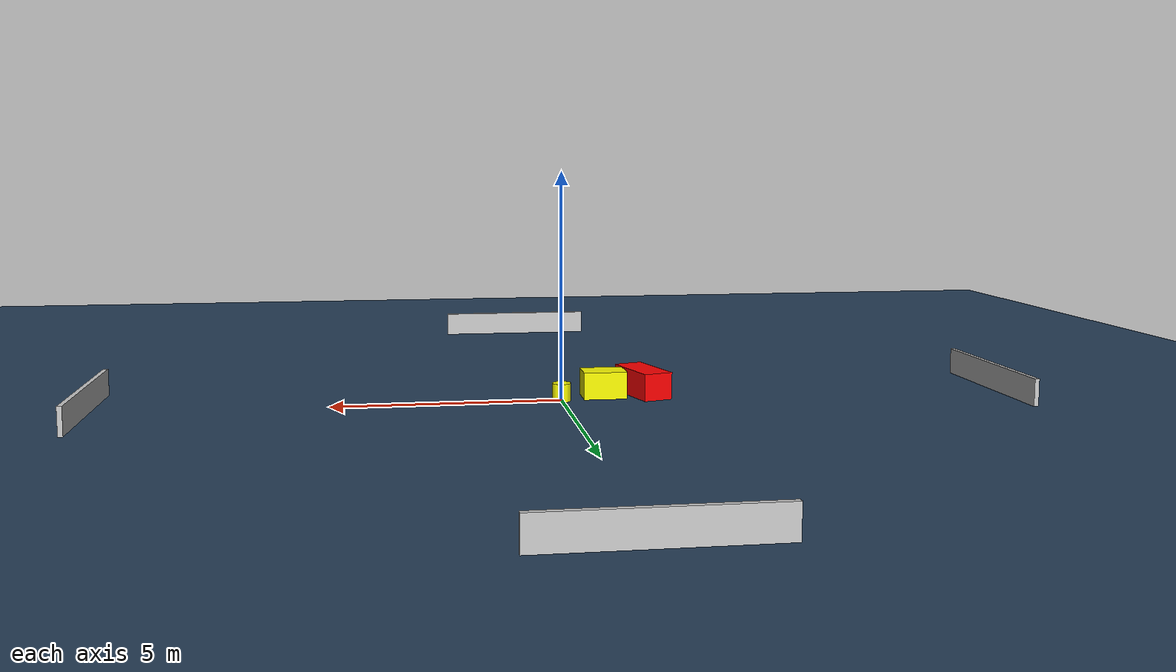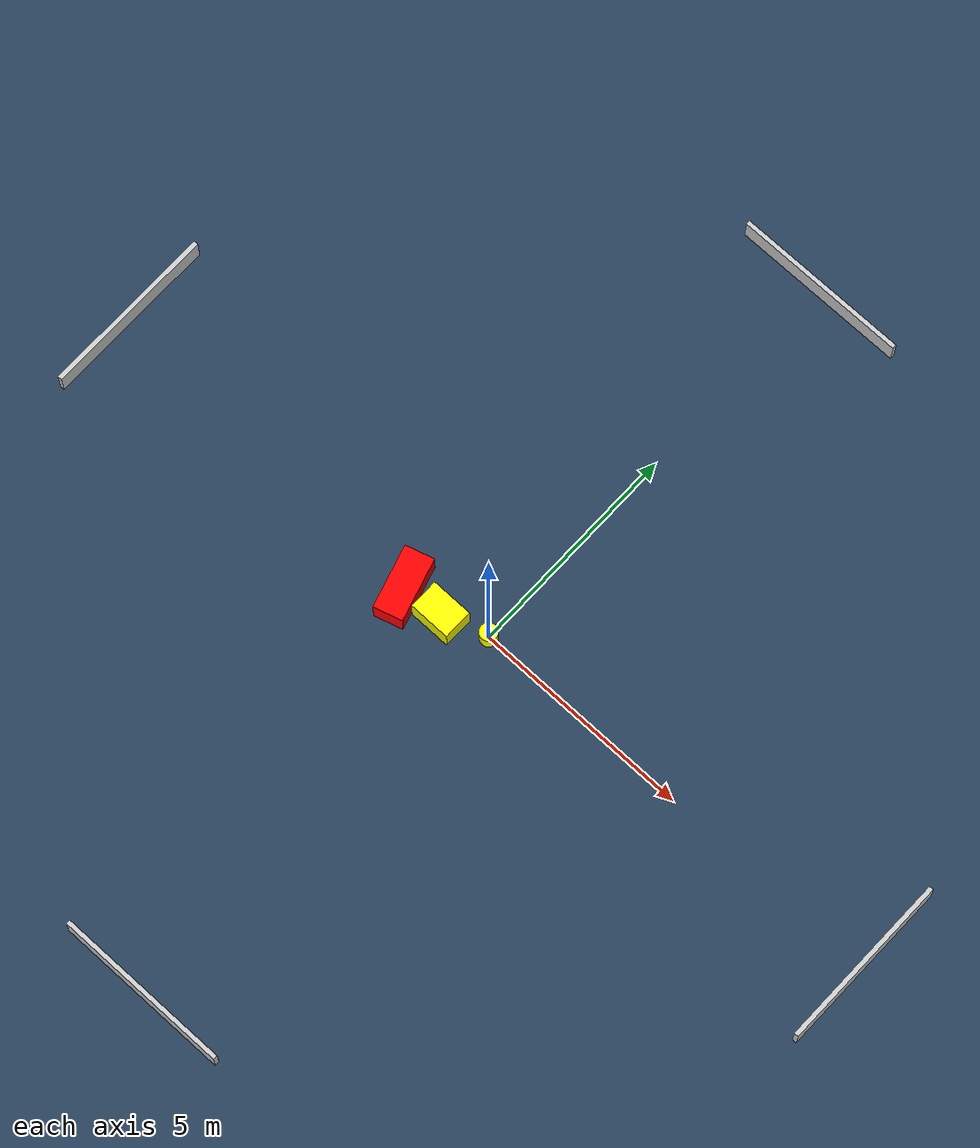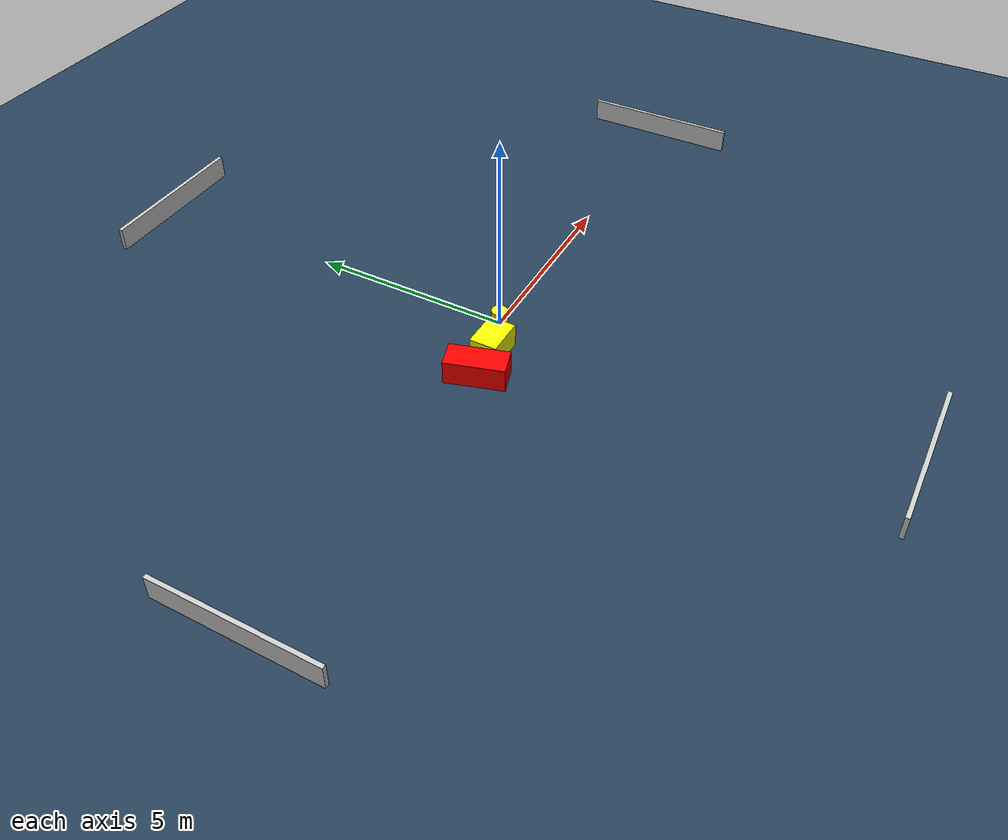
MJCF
<?xml version="1.0" ?>
<mujoco model="generated_environment">
  <option timestep="0.01" integrator="RK4" cone="elliptic"/>
  <default>
    <geom density="1"/>
  </default>
  <asset>
    <texture builtin="gradient" height="3072" name="skybox" rgb1="0.3 0.5 0.7" rgb2="0 0 0" type="skybox" width="512"/>
    <texture builtin="checker" height="300" name="groundplane" rgb1="0.2 0.3 0.4" rgb2="0.1 0.2 0.3" type="2d" width="300"/>
    <material name="groundplane" reflectance="0.2" texrepeat="5 5" texture="groundplane"/>
  </asset>
  <worldbody>
    <light dir="0 0 -1" directional="true" pos="0 0 1.5"/>
    <geom condim="3" friction="0.5 0.005 0.001" material="groundplane" name="floor" pos="0 0 0" size="0 0 0.05" type="plane"/>
    <body name="walls">
      <geom name="wall_1" condim="4" pos="-10.0 0.0 0.3" rgba="0.800000011920929 0.800000011920929 0.800000011920929 1.0" size="0.05 2.0 0.3" type="box"/>
      <geom name="wall_2" condim="4" pos="10.0 0.0 0.3" rgba="0.800000011920929 0.800000011920929 0.800000011920929 1.0" size="0.05 2.0 0.3" type="box"/>
      <geom name="wall_3" condim="4" pos="0.0 -10.0 0.3" rgba="0.800000011920929 0.800000011920929 0.800000011920929 1.0" size="2.0 0.05 0.3" type="box"/>
      <geom name="wall_4" condim="4" pos="0.0 10.0 0.3" rgba="0.800000011920929 0.800000011920929 0.800000011920929 1.0" size="2.0 0.05 0.3" type="box"/>
    </body>
    <body name="robot">
      <joint name="joint_x" type="slide" pos="0 0 0" axis="1 0 0"/>
      <joint name="joint_y" type="slide" pos="0 0 0" axis="0 1 0"/>
      <geom name="robot" type="cylinder" pos="0.0 0.0 0.2" size="0.2 0.2 0.0" mass="5.0" friction="1.0 0.005 0.0001" condim="4" rgba="1.0 1.0 0.0 1.0"/>
    </body>
    <body name="obstacle_1_movable">
      <geom name="obstacle_1_movable" condim="4" pos="-0.9856844008677531 -0.3480062548407263 0.3" euler="0 0 359.6124591027416" friction="0.0 0.005 0.001" rgba="1.0 1.0 0.0 1.0" size="0.4776786993961964 0.33885432453578423 0.3" type="box" mass="0.1"/>
      <joint type="free"/>
    </body>
    <body name="obstacle_2_static">
      <geom name="obstacle_2_static" condim="4" pos="-1.9060551488726865 -0.4423235960477064 0.3" euler="0 0 106.57004521603244" friction="0.0 0.005 0.001" rgba="1.0 0.0 0.0 1.0" size="0.7241844064214662 0.33382970151038616 0.3" type="box"/>
    </body>
  </worldbody>
  <actuator>
    <motor name="actuator_x" joint="joint_x" gear="1" ctrlrange="-1 1"/>
    <motor name="actuator_y" joint="joint_y" gear="1" ctrlrange="-1 1"/>
  </actuator>
</mujoco>
